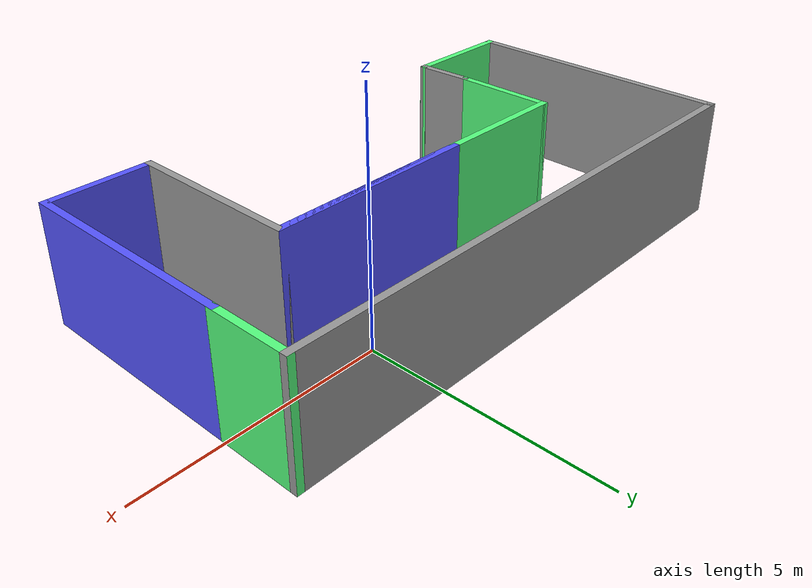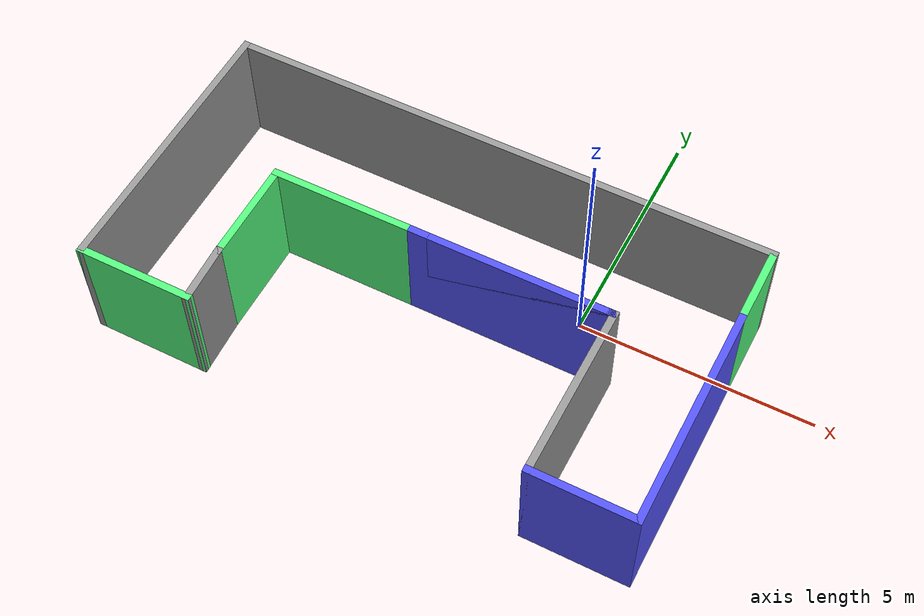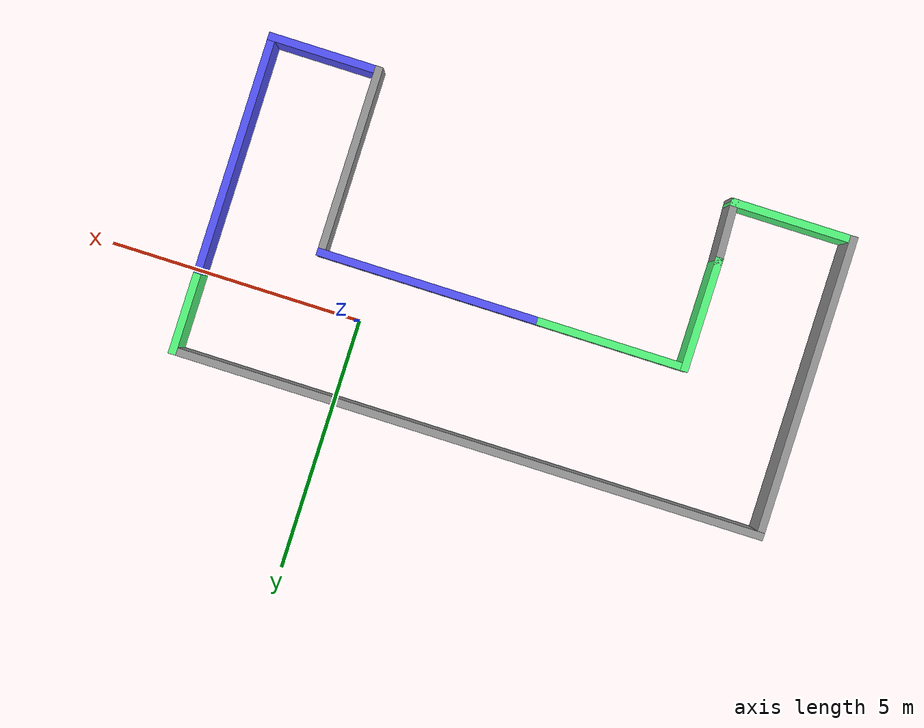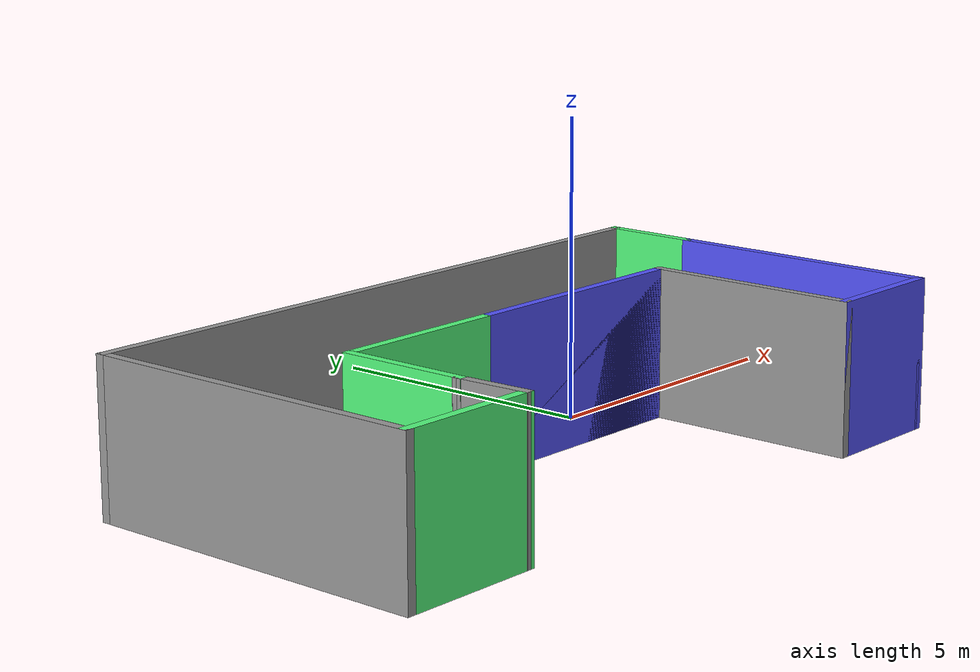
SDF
<?xml version='1.0'?>
<sdf version='1.6'>
  <model name='mybulding'>
    <pose frame=''>-2.66 -1.52 0 0 -0 0</pose>
    <link name='Wall_0'>
      <collision name='Wall_0_Collision'>
        <geometry>
          <box>
            <size>2.25 0.15 2.5</size>
          </box>
        </geometry>
        <pose frame=''>0 0 1.25 0 -0 0</pose>
      </collision>
      <visual name='Wall_0_Visual'>
        <pose frame=''>0 0 1.25 0 -0 0</pose>
        <geometry>
          <box>
            <size>2.25 0.15 2.5</size>
          </box>
        </geometry>
        <material>
          <script>
            <uri>file://media/materials/scripts/gazebo.material</uri>
            <name>Gazebo/Grey</name>
          </script>
          <ambient>0.333333 1 0.498039 1</ambient>
        </material>
        <meta>
          <layer>0</layer>
        </meta>
      </visual>
      <pose frame=''>-3.5 -0.55 0 0 -0 1.5708</pose>
    </link>
    <link name='Wall_1'>
      <collision name='Wall_1_Collision'>
        <geometry>
          <box>
            <size>3 0.15 2.5</size>
          </box>
        </geometry>
        <pose frame=''>0 0 1.25 0 -0 0</pose>
      </collision>
      <visual name='Wall_1_Visual'>
        <pose frame=''>0 0 1.25 0 -0 0</pose>
        <geometry>
          <box>
            <size>3 0.15 2.5</size>
          </box>
        </geometry>
        <material>
          <script>
            <uri>file://media/materials/scripts/gazebo.material</uri>
            <name>Gazebo/Grey</name>
          </script>
          <ambient>0.333333 1 0.498039 1</ambient>
        </material>
        <meta>
          <layer>0</layer>
        </meta>
      </visual>
      <pose frame=''>-2.075 0.5 0 0 -0 0</pose>
    </link>
    <link name='Wall_10'>
      <collision name='Wall_10_Collision'>
        <geometry>
          <box>
            <size>1.30109 0.15 2.5</size>
          </box>
        </geometry>
        <pose frame=''>0 0 1.25 0 -0 0</pose>
      </collision>
      <visual name='Wall_10_Visual'>
        <pose frame=''>0 0 1.25 0 -0 0</pose>
        <geometry>
          <box>
            <size>1.30109 0.15 2.5</size>
          </box>
        </geometry>
        <material>
          <script>
            <uri>file://media/materials/scripts/gazebo.material</uri>
            <name>Gazebo/Grey</name>
          </script>
          <ambient>1 1 1 1</ambient>
        </material>
        <meta>
          <layer>0</layer>
        </meta>
      </visual>
      <pose frame=''>-3.475 -2.175 0 0 -0 1.61425</pose>
    </link>
    <link name='Wall_11'>
      <collision name='Wall_11_Collision'>
        <geometry>
          <box>
            <size>0.15 0.15 2.5</size>
          </box>
        </geometry>
        <pose frame=''>0 0 1.25 0 -0 0</pose>
      </collision>
      <visual name='Wall_11_Visual'>
        <pose frame=''>0 0 1.25 0 -0 0</pose>
        <geometry>
          <box>
            <size>0.15 0.15 2.5</size>
          </box>
        </geometry>
        <material>
          <script>
            <uri>file://media/materials/scripts/gazebo.material</uri>
            <name>Gazebo/Grey</name>
          </script>
          <ambient>1 1 1 1</ambient>
        </material>
        <meta>
          <layer>0</layer>
        </meta>
      </visual>
      <pose frame=''>-3.5 -1.6 0 0 -0 0</pose>
    </link>
    <link name='Wall_2'>
      <pose frame=''>1.525 0.5 0 0 -0 0</pose>
      <visual name='Wall_2_Visual_0'>
        <pose frame=''>0 0 1.25 0 -0 0</pose>
        <geometry>
          <box>
            <size>4.5 0.15 2.5</size>
          </box>
        </geometry>
        <material>
          <script>
            <uri>file://media/materials/scripts/gazebo.material</uri>
            <name>Gazebo/Grey</name>
          </script>
          <ambient>0.333333 0.333333 1 1</ambient>
        </material>
        <meta>
          <layer>0</layer>
        </meta>
      </visual>
      <collision name='Wall_2_Collision_0'>
        <geometry>
          <box>
            <size>4.5 0.15 2.5</size>
          </box>
        </geometry>
        <pose frame=''>0 0 1.25 0 -0 0</pose>
      </collision>
      <visual name='Wall_2_Visual_1'>
        <pose frame=''>0.28499 0 1.25 0 -0 0</pose>
        <geometry>
          <box>
            <size>3.93002 0.15 2.5</size>
          </box>
        </geometry>
        <material>
          <script>
            <uri>file://media/materials/scripts/gazebo.material</uri>
            <name>Gazebo/Grey</name>
          </script>
          <ambient>0.333333 0.333333 1 1</ambient>
        </material>
        <meta>
          <layer>0</layer>
        </meta>
      </visual>
      <collision name='Wall_2_Collision_1'>
        <geometry>
          <box>
            <size>3.93002 0.15 2.5</size>
          </box>
        </geometry>
        <pose frame=''>0.28499 0 1.25 0 -0 0</pose>
      </collision>
    </link>
    <link name='Wall_3'>
      <collision name='Wall_3_Collision'>
        <geometry>
          <box>
            <size>3.75 0.15 2.5</size>
          </box>
        </geometry>
        <pose frame=''>0 0 1.25 0 -0 0</pose>
      </collision>
      <visual name='Wall_3_Visual'>
        <pose frame=''>0 0 1.25 0 -0 0</pose>
        <geometry>
          <box>
            <size>3.75 0.15 2.5</size>
          </box>
        </geometry>
        <material>
          <script>
            <uri>file://media/materials/scripts/gazebo.material</uri>
            <name>Gazebo/Grey</name>
          </script>
          <ambient>1 1 1 1</ambient>
        </material>
        <meta>
          <layer>0</layer>
        </meta>
      </visual>
      <pose frame=''>3.7 -1.3 0 0 0 -1.5708</pose>
    </link>
    <link name='Wall_4'>
      <collision name='Wall_4_Collision'>
        <geometry>
          <box>
            <size>2.25 0.15 2.5</size>
          </box>
        </geometry>
        <pose frame=''>0 0 1.25 0 -0 0</pose>
      </collision>
      <visual name='Wall_4_Visual'>
        <pose frame=''>0 0 1.25 0 -0 0</pose>
        <geometry>
          <box>
            <size>2.25 0.15 2.5</size>
          </box>
        </geometry>
        <material>
          <script>
            <uri>file://media/materials/scripts/gazebo.material</uri>
            <name>Gazebo/Grey</name>
          </script>
          <ambient>0.333333 0.333333 1 1</ambient>
        </material>
        <meta>
          <layer>0</layer>
        </meta>
      </visual>
      <pose frame=''>4.75 -3.1 0 0 -0 0</pose>
    </link>
    <link name='Wall_5'>
      <collision name='Wall_5_Collision'>
        <geometry>
          <box>
            <size>4.75 0.15 2.5</size>
          </box>
        </geometry>
        <pose frame=''>0 0 1.25 0 -0 0</pose>
      </collision>
      <visual name='Wall_5_Visual'>
        <pose frame=''>0 0 1.25 0 -0 0</pose>
        <geometry>
          <box>
            <size>4.75 0.15 2.5</size>
          </box>
        </geometry>
        <material>
          <script>
            <uri>file://media/materials/scripts/gazebo.material</uri>
            <name>Gazebo/Grey</name>
          </script>
          <ambient>0.333333 0.333333 1 1</ambient>
        </material>
        <meta>
          <layer>0</layer>
        </meta>
      </visual>
      <pose frame=''>5.8 -0.8 0 0 -0 1.5708</pose>
    </link>
    <link name='Wall_6'>
      <collision name='Wall_6_Collision'>
        <geometry>
          <box>
            <size>1.75 0.15 2.5</size>
          </box>
        </geometry>
        <pose frame=''>0 0 1.25 0 -0 0</pose>
      </collision>
      <visual name='Wall_6_Visual'>
        <pose frame=''>0 0 1.25 0 -0 0</pose>
        <geometry>
          <box>
            <size>1.75 0.15 2.5</size>
          </box>
        </geometry>
        <material>
          <script>
            <uri>file://media/materials/scripts/gazebo.material</uri>
            <name>Gazebo/Grey</name>
          </script>
          <ambient>0.333333 1 0.498039 1</ambient>
        </material>
        <meta>
          <layer>0</layer>
        </meta>
      </visual>
      <pose frame=''>5.8 2.3 0 0 -0 1.5708</pose>
    </link>
    <link name='Wall_7'>
      <collision name='Wall_7_Collision'>
        <geometry>
          <box>
            <size>11.75 0.15 2.5</size>
          </box>
        </geometry>
        <pose frame=''>0 0 1.25 0 -0 0</pose>
      </collision>
      <visual name='Wall_7_Visual'>
        <pose frame=''>0 0 1.25 0 -0 0</pose>
        <geometry>
          <box>
            <size>11.75 0.15 2.5</size>
          </box>
        </geometry>
        <material>
          <script>
            <uri>file://media/materials/scripts/gazebo.material</uri>
            <name>Gazebo/Grey</name>
          </script>
          <ambient>1 1 1 1</ambient>
        </material>
        <meta>
          <layer>0</layer>
        </meta>
      </visual>
      <pose frame=''>0 3.1 0 0 -0 3.14159</pose>
    </link>
    <link name='Wall_8'>
      <collision name='Wall_8_Collision'>
        <geometry>
          <box>
            <size>6 0.15 2.5</size>
          </box>
        </geometry>
        <pose frame=''>0 0 1.25 0 -0 0</pose>
      </collision>
      <visual name='Wall_8_Visual'>
        <pose frame=''>0 0 1.25 0 -0 0</pose>
        <geometry>
          <box>
            <size>6 0.15 2.5</size>
          </box>
        </geometry>
        <material>
          <script>
            <uri>file://media/materials/scripts/gazebo.material</uri>
            <name>Gazebo/Grey</name>
          </script>
          <ambient>1 1 1 1</ambient>
        </material>
        <meta>
          <layer>0</layer>
        </meta>
      </visual>
      <pose frame=''>-5.8 0.175 0 0 0 -1.5708</pose>
    </link>
    <link name='Wall_9'>
      <collision name='Wall_9_Collision'>
        <geometry>
          <box>
            <size>2.5 0.15 2.5</size>
          </box>
        </geometry>
        <pose frame=''>0 0 1.25 0 -0 0</pose>
      </collision>
      <visual name='Wall_9_Visual'>
        <pose frame=''>0 0 1.25 0 -0 0</pose>
        <geometry>
          <box>
            <size>2.5 0.15 2.5</size>
          </box>
        </geometry>
        <material>
          <script>
            <uri>file://media/materials/scripts/gazebo.material</uri>
            <name>Gazebo/Grey</name>
          </script>
          <ambient>0.333333 1 0.498039 1</ambient>
        </material>
        <meta>
          <layer>0</layer>
        </meta>
      </visual>
      <pose frame=''>-4.625 -2.75 0 0 -0 0</pose>
    </link>
    <static>1</static>
  </model>
</sdf>
